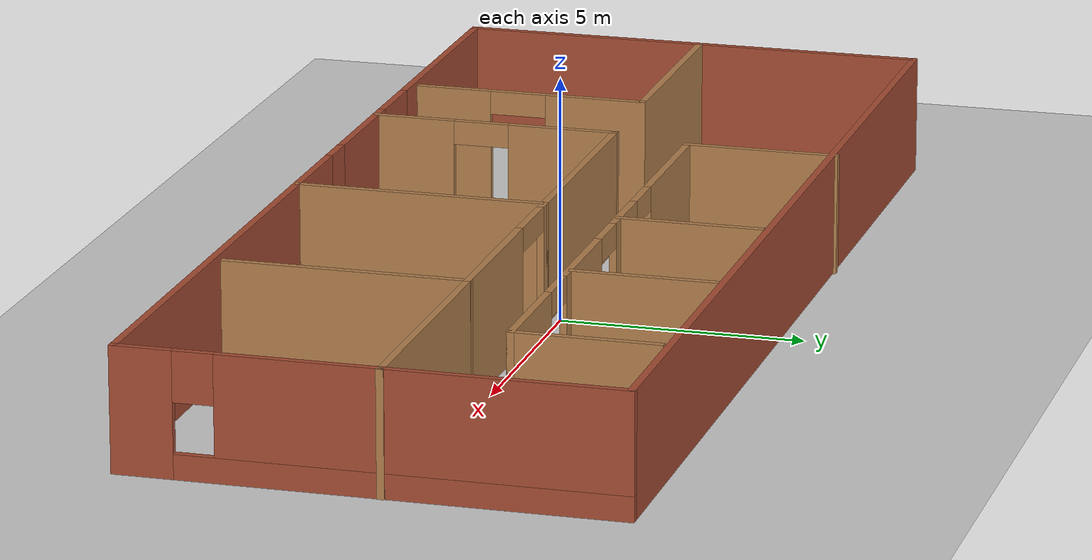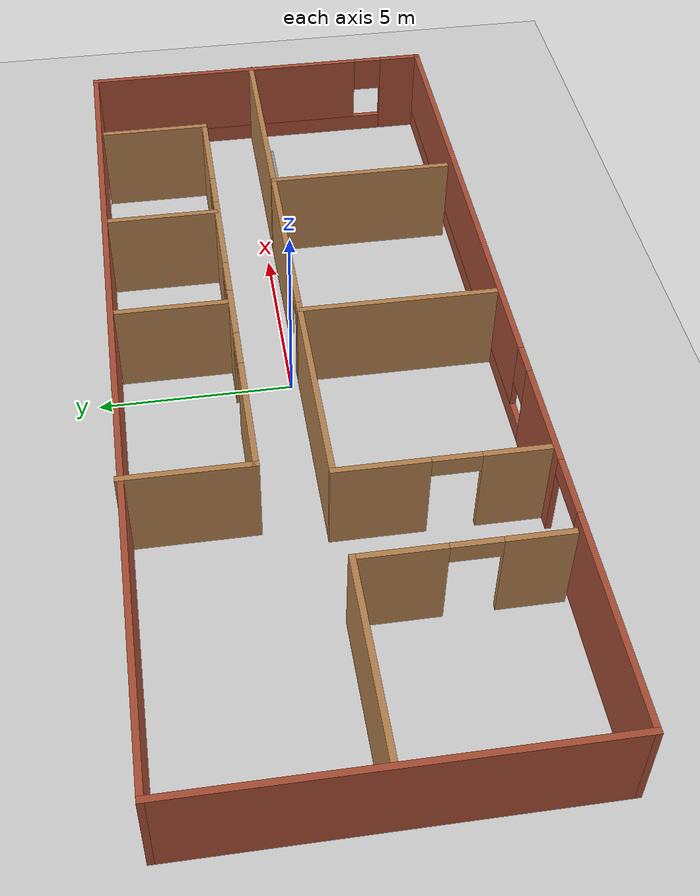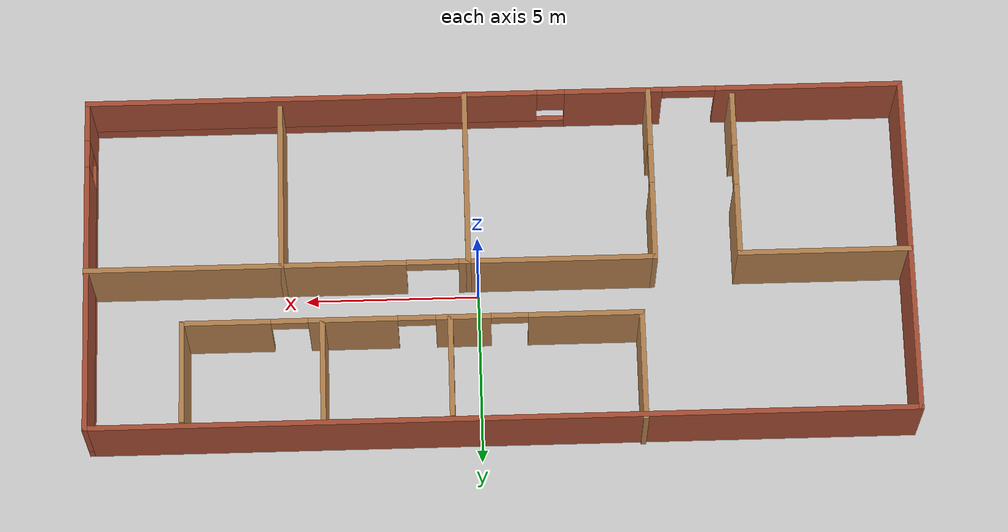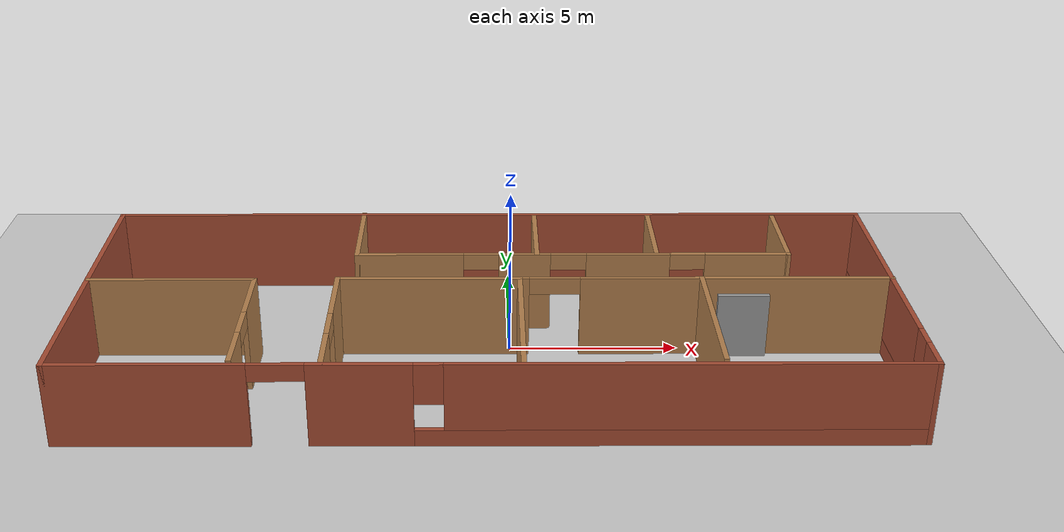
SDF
<sdf version="1.6">
 <world name="default">
  <light name="sun" type="directional">
   <pose>0 0 10 0 -0 0</pose>
   <diffuse>0.8 0.8 0.8 1</diffuse>
   <specular>0.2 0.2 0.2 1</specular>
   <attenuation>
    <range>1000</range>
    <constant>0.9</constant>
    <linear>0.01</linear>
    <quadratic>0.001</quadratic>
   </attenuation>
   <direction>-0.5 0.1 -0.9</direction>
  </light>
  <model name="ground_plane">
   <static>1</static>
   <link name="link">
    <collision name="collision">
     <geometry><plane><normal>0 0 1</normal><size>100 100</size></plane></geometry>
     <surface><friction><ode><mu>100</mu><mu2>50</mu2></ode></friction></surface>
    </collision>
    <visual name="visual">
     <cast_shadows>0</cast_shadows>
     <geometry><plane><normal>0 0 1</normal><size>100 100</size></plane></geometry>
     <material>
      <script><uri>file://media/materials/scripts/gazebo.material</uri><name>Gazebo/Grey</name></script>
     </material>
    </visual>
   </link>
  </model>
  <gravity>0 0 -9.8</gravity>
  <magnetic_field>6e-06 2.3e-05 -4.2e-05</magnetic_field>
  <atmosphere type="adiabatic"/>
  <physics name="default_physics" default="0" type="ode">
   <max_step_size>0.001</max_step_size>
   <real_time_factor>1</real_time_factor>
   <real_time_update_rate>1000</real_time_update_rate>
  </physics>
  <scene><ambient>0.4 0.4 0.4 1</ambient><background>0.7 0.7 0.7 1</background><shadows>1</shadows></scene>
  <spherical_coordinates>
   <surface_model>EARTH_WGS84</surface_model>
   <latitude_deg>0</latitude_deg>
   <longitude_deg>0</longitude_deg>
   <elevation>0</elevation>
   <heading_deg>0</heading_deg>
  </spherical_coordinates>
  <model name="walls_office">
   <pose>-0.58959 -0.448884 0 0 -0 0</pose>
   <link name="Door_4">
    <collision name="Door_4_Collision">
     <geometry><box><size>1.52453 0.2 2</size></box></geometry>
     <pose>0 0 1 0 -0 0</pose>
    </collision>
    <visual name="Door_4_Visual">
     <pose>0 0 1 0 -0 0</pose>
     <geometry><box><size>1.52453 0.2 2</size></box></geometry>
     <material>
      <script><uri>file://media/materials/scripts/gazebo.material</uri><name>Gazebo/Grey</name></script>
     </material>
    </visual>
    <pose>7.45784 0.061186 0 0 -0 0</pose>
   </link>
   <link name="Wall_0">
    <pose>-0.011229 -4.95581 0 0 -0 0</pose>
    <visual name="Wall_0_Visual_0">
     <pose>-9.1511 0 1.25 0 -0 0</pose>
     <geometry><box><size>5.4478 0.15 2.5</size></box></geometry>
     <material>
      <script><uri>file://media/materials/scripts/gazebo.material</uri><name>Gazebo/Bricks</name></script>
      <ambient>1 1 1 1</ambient>
     </material>
     <meta><layer>0</layer></meta>
    </visual>
    <collision name="Wall_0_Collision_0">
     <geometry><box><size>5.4478 0.15 2.5</size></box></geometry>
     <pose>-9.1511 0 1.25 0 -0 0</pose>
    </collision>
    <visual name="Wall_0_Visual_1">
     <pose>-3.46853 0 1.25 0 -0 0</pose>
     <geometry><box><size>2.84447 0.15 2.5</size></box></geometry>
     <material>
      <script><uri>file://media/materials/scripts/gazebo.material</uri><name>Gazebo/Bricks</name></script>
      <ambient>1 1 1 1</ambient>
     </material>
     <meta><layer>0</layer></meta>
    </visual>
    <collision name="Wall_0_Collision_1">
     <geometry><box><size>2.84447 0.15 2.5</size></box></geometry>
     <pose>-3.46853 0 1.25 0 -0 0</pose>
    </collision>
    <visual name="Wall_0_Visual_2">
     <pose>4.91435 0 0.25 0 -0 0</pose>
     <geometry><box><size>13.9213 0.15 0.5</size></box></geometry>
     <material>
      <script><uri>file://media/materials/scripts/gazebo.material</uri><name>Gazebo/Bricks</name></script>
      <ambient>1 1 1 1</ambient>
     </material>
     <meta><layer>0</layer></meta>
    </visual>
    <collision name="Wall_0_Collision_2">
     <geometry><box><size>13.9213 0.15 0.5</size></box></geometry>
     <pose>4.91435 0 0.25 0 -0 0</pose>
    </collision>
    <visual name="Wall_0_Visual_3">
     <pose>5.31435 0 1.5 0 -0 0</pose>
     <geometry><box><size>13.1213 0.15 2</size></box></geometry>
     <material>
      <script><uri>file://media/materials/scripts/gazebo.material</uri><name>Gazebo/Bricks</name></script>
      <ambient>1 1 1 1</ambient>
     </material>
     <meta><layer>0</layer></meta>
    </visual>
    <collision name="Wall_0_Collision_3">
     <geometry><box><size>13.1213 0.15 2</size></box></geometry>
     <pose>5.31435 0 1.5 0 -0 0</pose>
    </collision>
    <visual name="Wall_0_Visual_4">
     <pose>-1.64629 0 1.9 0 -0 0</pose>
     <geometry><box><size>0.8 0.15 1.2</size></box></geometry>
     <material>
      <script><uri>file://media/materials/scripts/gazebo.material</uri><name>Gazebo/Bricks</name></script>
      <ambient>1 1 1 1</ambient>
     </material>
     <meta><layer>0</layer></meta>
    </visual>
    <collision name="Wall_0_Collision_4">
     <geometry><box><size>0.8 0.15 1.2</size></box></geometry>
     <pose>-1.64629 0 1.9 0 -0 0</pose>
    </collision>
    <visual name="Wall_0_Visual_5">
     <pose>-5.65898 0 2.25 0 -0 0</pose>
     <geometry><box><size>1.53644 0.15 0.5</size></box></geometry>
     <material>
      <script><uri>file://media/materials/scripts/gazebo.material</uri><name>Gazebo/Bricks</name></script>
      <ambient>1 1 1 1</ambient>
     </material>
     <meta><layer>0</layer></meta>
    </visual>
    <collision name="Wall_0_Collision_5">
     <geometry><box><size>1.53644 0.15 0.5</size></box></geometry>
     <pose>-5.65898 0 2.25 0 -0 0</pose>
    </collision>
   </link>
   <link name="Wall_1">
    <pose>11.7888 -0.030808 0 0 -0 1.5708</pose>
    <visual name="Wall_1_Visual_0">
     <pose>-4.38797 0 1.25 0 -0 0</pose>
     <geometry><box><size>1.22407 0.15 2.5</size></box></geometry>
     <material>
      <script><uri>file://media/materials/scripts/gazebo.material</uri><name>Gazebo/Bricks</name></script>
      <ambient>1 1 1 1</ambient>
     </material>
     <meta><layer>0</layer></meta>
    </visual>
    <collision name="Wall_1_Collision_0">
     <geometry><box><size>1.22407 0.15 2.5</size></box></geometry>
     <pose>-4.38797 0 1.25 0 -0 0</pose>
    </collision>
    <visual name="Wall_1_Visual_1">
     <pose>0.612035 0 0.25 0 -0 0</pose>
     <geometry><box><size>8.77593 0.15 0.5</size></box></geometry>
     <material>
      <script><uri>file://media/materials/scripts/gazebo.material</uri><name>Gazebo/Bricks</name></script>
      <ambient>1 1 1 1</ambient>
     </material>
     <meta><layer>0</layer></meta>
    </visual>
    <collision name="Wall_1_Collision_1">
     <geometry><box><size>8.77593 0.15 0.5</size></box></geometry>
     <pose>0.612035 0 0.25 0 -0 0</pose>
    </collision>
    <visual name="Wall_1_Visual_2">
     <pose>1.01204 0 1.5 0 -0 0</pose>
     <geometry><box><size>7.97593 0.15 2</size></box></geometry>
     <material>
      <script><uri>file://media/materials/scripts/gazebo.material</uri><name>Gazebo/Bricks</name></script>
      <ambient>1 1 1 1</ambient>
     </material>
     <meta><layer>0</layer></meta>
    </visual>
    <collision name="Wall_1_Collision_2">
     <geometry><box><size>7.97593 0.15 2</size></box></geometry>
     <pose>1.01204 0 1.5 0 -0 0</pose>
    </collision>
    <visual name="Wall_1_Visual_3">
     <pose>-3.37593 0 2 0 -0 0</pose>
     <geometry><box><size>0.8 0.15 1</size></box></geometry>
     <material>
      <script><uri>file://media/materials/scripts/gazebo.material</uri><name>Gazebo/Bricks</name></script>
      <ambient>1 1 1 1</ambient>
     </material>
     <meta><layer>0</layer></meta>
    </visual>
    <collision name="Wall_1_Collision_3">
     <geometry><box><size>0.8 0.15 1</size></box></geometry>
     <pose>-3.37593 0 2 0 -0 0</pose>
    </collision>
   </link>
   <link name="Wall_10">
    <pose>-4.48877 -2.36535 0 0 -0 1.5708</pose>
    <visual name="Wall_10_Visual_0">
     <pose>-1.75423 0 1.25 0 -0 0</pose>
     <geometry><box><size>1.74154 0.15 2.5</size></box></geometry>
     <material>
      <script><uri>file://media/materials/scripts/gazebo.material</uri><name>Gazebo/Wood</name></script>
      <ambient>1 1 1 1</ambient>
     </material>
     <meta><layer>0</layer></meta>
    </visual>
    <collision name="Wall_10_Collision_0">
     <geometry><box><size>1.74154 0.15 2.5</size></box></geometry>
     <pose>-1.75423 0 1.25 0 -0 0</pose>
    </collision>
    <visual name="Wall_10_Visual_1">
     <pose>1.45955 0 1.25 0 -0 0</pose>
     <geometry><box><size>2.3309 0.15 2.5</size></box></geometry>
     <material>
      <script><uri>file://media/materials/scripts/gazebo.material</uri><name>Gazebo/Wood</name></script>
      <ambient>1 1 1 1</ambient>
     </material>
     <meta><layer>0</layer></meta>
    </visual>
    <collision name="Wall_10_Collision_1">
     <geometry><box><size>2.3309 0.15 2.5</size></box></geometry>
     <pose>1.45955 0 1.25 0 -0 0</pose>
    </collision>
    <visual name="Wall_10_Visual_2">
     <pose>-0.29468 0 2.25 0 -0 0</pose>
     <geometry><box><size>1.17757 0.15 0.5</size></box></geometry>
     <material>
      <script><uri>file://media/materials/scripts/gazebo.material</uri><name>Gazebo/Wood</name></script>
      <ambient>1 1 1 1</ambient>
     </material>
     <meta><layer>0</layer></meta>
    </visual>
    <collision name="Wall_10_Collision_2">
     <geometry><box><size>1.17757 0.15 0.5</size></box></geometry>
     <pose>-0.29468 0 2.25 0 -0 0</pose>
    </collision>
   </link>
   <link name="Wall_11">
    <collision name="Wall_11_Collision">
     <geometry><box><size>5.5 0.15 2.5</size></box></geometry>
     <pose>0 0 1.25 0 -0 0</pose>
    </collision>
    <visual name="Wall_11_Visual">
     <pose>0 0 1.25 0 -0 0</pose>
     <geometry><box><size>5.5 0.15 2.5</size></box></geometry>
     <material>
      <script><uri>file://media/materials/scripts/gazebo.material</uri><name>Gazebo/Wood</name></script>
      <ambient>1 1 1 1</ambient>
     </material>
     <meta><layer>0</layer></meta>
    </visual>
    <pose>-1.81377 0.184648 0 0 -0 0</pose>
   </link>
   <link name="Wall_12">
    <collision name="Wall_12_Collision">
     <geometry><box><size>5.25 0.15 2.5</size></box></geometry>
     <pose>0 0 1.25 0 -0 0</pose>
    </collision>
    <visual name="Wall_12_Visual">
     <pose>0 0 1.25 0 -0 0</pose>
     <geometry><box><size>5.25 0.15 2.5</size></box></geometry>
     <material>
      <script><uri>file://media/materials/scripts/gazebo.material</uri><name>Gazebo/Wood</name></script>
      <ambient>1 1 1 1</ambient>
     </material>
     <meta><layer>0</layer></meta>
    </visual>
    <pose>0.86123 -2.36535 0 0 0 -1.5708</pose>
   </link>
   <link name="Wall_14">
    <pose>3.53623 0.184648 0 0 -0 0</pose>
    <visual name="Wall_14_Visual_0">
     <pose>-2.57496 0 1.25 0 -0 0</pose>
     <geometry><box><size>0.350081 0.15 2.5</size></box></geometry>
     <material>
      <script><uri>file://media/materials/scripts/gazebo.material</uri><name>Gazebo/Wood</name></script>
      <ambient>1 1 1 1</ambient>
     </material>
     <meta><layer>0</layer></meta>
    </visual>
    <collision name="Wall_14_Collision_0">
     <geometry><box><size>0.350081 0.15 2.5</size></box></geometry>
     <pose>-2.57496 0 1.25 0 -0 0</pose>
    </collision>
    <visual name="Wall_14_Visual_1">
     <pose>0.925738 0 1.25 0 -0 0</pose>
     <geometry><box><size>3.64852 0.15 2.5</size></box></geometry>
     <material>
      <script><uri>file://media/materials/scripts/gazebo.material</uri><name>Gazebo/Wood</name></script>
      <ambient>1 1 1 1</ambient>
     </material>
     <meta><layer>0</layer></meta>
    </visual>
    <collision name="Wall_14_Collision_1">
     <geometry><box><size>3.64852 0.15 2.5</size></box></geometry>
     <pose>0.925738 0 1.25 0 -0 0</pose>
    </collision>
    <visual name="Wall_14_Visual_2">
     <pose>-1.64922 0 2.25 0 -0 0</pose>
     <geometry><box><size>1.5014 0.15 0.5</size></box></geometry>
     <material>
      <script><uri>file://media/materials/scripts/gazebo.material</uri><name>Gazebo/Wood</name></script>
      <ambient>1 1 1 1</ambient>
     </material>
     <meta><layer>0</layer></meta>
    </visual>
    <collision name="Wall_14_Collision_2">
     <geometry><box><size>1.5014 0.15 0.5</size></box></geometry>
     <pose>-1.64922 0 2.25 0 -0 0</pose>
    </collision>
   </link>
   <link name="Wall_15">
    <collision name="Wall_15_Collision">
     <geometry><box><size>5 0.15 2.5</size></box></geometry>
     <pose>0 0 1.25 0 -0 0</pose>
    </collision>
    <visual name="Wall_15_Visual">
     <pose>0 0 1.25 0 -0 0</pose>
     <geometry><box><size>5 0.15 2.5</size></box></geometry>
     <material>
      <script><uri>file://media/materials/scripts/gazebo.material</uri><name>Gazebo/Wood</name></script>
      <ambient>1 1 1 1</ambient>
     </material>
     <meta><layer>0</layer></meta>
    </visual>
    <pose>6.21123 -2.24035 0 0 0 -1.5708</pose>
   </link>
   <link name="Wall_17">
    <collision name="Wall_17_Collision">
     <geometry><box><size>5.75 0.15 2.5</size></box></geometry>
     <pose>0 0 1.25 0 -0 0</pose>
    </collision>
    <visual name="Wall_17_Visual">
     <pose>0 0 1.25 0 -0 0</pose>
     <geometry><box><size>5.75 0.15 2.5</size></box></geometry>
     <material>
      <script><uri>file://media/materials/scripts/gazebo.material</uri><name>Gazebo/Wood</name></script>
      <ambient>1 1 1 1</ambient>
     </material>
     <meta><layer>0</layer></meta>
    </visual>
    <pose>9.01123 0.184648 0 0 -0 0</pose>
   </link>
   <link name="Wall_19">
    <collision name="Wall_19_Collision">
     <geometry><box><size>3.25 0.15 2.5</size></box></geometry>
     <pose>0 0 1.25 0 -0 0</pose>
    </collision>
    <visual name="Wall_19_Visual">
     <pose>0 0 1.25 0 -0 0</pose>
     <geometry><box><size>3.25 0.15 2.5</size></box></geometry>
     <material>
      <script><uri>file://media/materials/scripts/gazebo.material</uri><name>Gazebo/Wood</name></script>
      <ambient>1 1 1 1</ambient>
     </material>
     <meta><layer>0</layer></meta>
    </visual>
    <pose>-4.04376 3.40581 0 0 0 -1.5708</pose>
   </link>
   <link name="Wall_2">
    <collision name="Wall_2_Collision">
     <geometry><box><size>23.75 0.15 2.5</size></box></geometry>
     <pose>0 0 1.25 0 -0 0</pose>
    </collision>
    <visual name="Wall_2_Visual">
     <pose>0 0 1.25 0 -0 0</pose>
     <geometry><box><size>23.75 0.15 2.5</size></box></geometry>
     <material>
      <script><uri>file://media/materials/scripts/gazebo.material</uri><name>Gazebo/Bricks</name></script>
      <ambient>1 1 1 1</ambient>
     </material>
     <meta><layer>0</layer></meta>
    </visual>
    <pose>-0.011229 4.89419 0 0 -0 3.14159</pose>
   </link>
   <link name="Wall_20">
    <pose>2.50624 1.85581 0 0 -0 0</pose>
    <visual name="Wall_20_Visual_0">
     <pose>-4.97086 0 1.25 0 -0 0</pose>
     <geometry><box><size>3.30827 0.15 2.5</size></box></geometry>
     <material>
      <script><uri>file://media/materials/scripts/gazebo.material</uri><name>Gazebo/Wood</name></script>
      <ambient>1 1 1 1</ambient>
     </material>
     <meta><layer>0</layer></meta>
    </visual>
    <collision name="Wall_20_Collision_0">
     <geometry><box><size>3.30827 0.15 2.5</size></box></geometry>
     <pose>-4.97086 0 1.25 0 -0 0</pose>
    </collision>
    <visual name="Wall_20_Visual_1">
     <pose>-1.46608 0 1.25 0 -0 0</pose>
     <geometry><box><size>1.57747 0.15 2.5</size></box></geometry>
     <material>
      <script><uri>file://media/materials/scripts/gazebo.material</uri><name>Gazebo/Wood</name></script>
      <ambient>1 1 1 1</ambient>
     </material>
     <meta><layer>0</layer></meta>
    </visual>
    <collision name="Wall_20_Collision_1">
     <geometry><box><size>1.57747 0.15 2.5</size></box></geometry>
     <pose>-1.46608 0 1.25 0 -0 0</pose>
    </collision>
    <visual name="Wall_20_Visual_2">
     <pose>1.68093 0 1.25 0 -0 0</pose>
     <geometry><box><size>2.54646 0.15 2.5</size></box></geometry>
     <material>
      <script><uri>file://media/materials/scripts/gazebo.material</uri><name>Gazebo/Wood</name></script>
      <ambient>1 1 1 1</ambient>
     </material>
     <meta><layer>0</layer></meta>
    </visual>
    <collision name="Wall_20_Collision_2">
     <geometry><box><size>2.54646 0.15 2.5</size></box></geometry>
     <pose>1.68093 0 1.25 0 -0 0</pose>
    </collision>
    <visual name="Wall_20_Visual_3">
     <pose>5.32054 0 1.25 0 -0 0</pose>
     <geometry><box><size>2.60893 0.15 2.5</size></box></geometry>
     <material>
      <script><uri>file://media/materials/scripts/gazebo.material</uri><name>Gazebo/Wood</name></script>
      <ambient>1 1 1 1</ambient>
     </material>
     <meta><layer>0</layer></meta>
    </visual>
    <collision name="Wall_20_Collision_3">
     <geometry><box><size>2.60893 0.15 2.5</size></box></geometry>
     <pose>5.32054 0 1.25 0 -0 0</pose>
    </collision>
    <visual name="Wall_20_Visual_4">
     <pose>-2.78577 0 2.25 0 -0 0</pose>
     <geometry><box><size>1.06191 0.15 0.5</size></box></geometry>
     <material>
      <script><uri>file://media/materials/scripts/gazebo.material</uri><name>Gazebo/Wood</name></script>
      <ambient>1 1 1 1</ambient>
     </material>
     <meta><layer>0</layer></meta>
    </visual>
    <collision name="Wall_20_Collision_4">
     <geometry><box><size>1.06191 0.15 0.5</size></box></geometry>
     <pose>-2.78577 0 2.25 0 -0 0</pose>
    </collision>
    <visual name="Wall_20_Visual_5">
     <pose>-0.134826 0 2.25 0 -0 0</pose>
     <geometry><box><size>1.08505 0.15 0.5</size></box></geometry>
     <material>
      <script><uri>file://media/materials/scripts/gazebo.material</uri><name>Gazebo/Wood</name></script>
      <ambient>1 1 1 1</ambient>
     </material>
     <meta><layer>0</layer></meta>
    </visual>
    <collision name="Wall_20_Collision_5">
     <geometry><box><size>1.08505 0.15 0.5</size></box></geometry>
     <pose>-0.134826 0 2.25 0 -0 0</pose>
    </collision>
    <visual name="Wall_20_Visual_6">
     <pose>3.48511 0 2.25 0 -0 0</pose>
     <geometry><box><size>1.06191 0.15 0.5</size></box></geometry>
     <material>
      <script><uri>file://media/materials/scripts/gazebo.material</uri><name>Gazebo/Wood</name></script>
      <ambient>1 1 1 1</ambient>
     </material>
     <meta><layer>0</layer></meta>
    </visual>
    <collision name="Wall_20_Collision_6">
     <geometry><box><size>1.06191 0.15 0.5</size></box></geometry>
     <pose>3.48511 0 2.25 0 -0 0</pose>
    </collision>
   </link>
   <link name="Wall_21">
    <collision name="Wall_21_Collision">
     <geometry><box><size>3 0.15 2.5</size></box></geometry>
     <pose>0 0 1.25 0 -0 0</pose>
    </collision>
    <visual name="Wall_21_Visual">
     <pose>0 0 1.25 0 -0 0</pose>
     <geometry><box><size>3 0.15 2.5</size></box></geometry>
     <material>
      <script><uri>file://media/materials/scripts/gazebo.material</uri><name>Gazebo/Wood</name></script>
      <ambient>1 1 1 1</ambient>
     </material>
     <meta><layer>0</layer></meta>
    </visual>
    <pose>9.05624 3.28081 0 0 -0 1.5708</pose>
   </link>
   <link name="Wall_23">
    <collision name="Wall_23_Collision">
     <geometry><box><size>3 0.15 2.5</size></box></geometry>
     <pose>0 0 1.25 0 -0 0</pose>
    </collision>
    <visual name="Wall_23_Visual">
     <pose>0 0 1.25 0 -0 0</pose>
     <geometry><box><size>3 0.15 2.5</size></box></geometry>
     <material>
      <script><uri>file://media/materials/scripts/gazebo.material</uri><name>Gazebo/Wood</name></script>
      <ambient>1 1 1 1</ambient>
     </material>
     <meta><layer>0</layer></meta>
    </visual>
    <pose>1.41775 3.30619 0 0 -0 1.5708</pose>
   </link>
   <link name="Wall_25">
    <collision name="Wall_25_Collision">
     <geometry><box><size>3 0.15 2.5</size></box></geometry>
     <pose>0 0 1.25 0 -0 0</pose>
    </collision>
    <visual name="Wall_25_Visual">
     <pose>0 0 1.25 0 -0 0</pose>
     <geometry><box><size>3 0.15 2.5</size></box></geometry>
     <material>
      <script><uri>file://media/materials/scripts/gazebo.material</uri><name>Gazebo/Wood</name></script>
      <ambient>1 1 1 1</ambient>
     </material>
     <meta><layer>0</layer></meta>
    </visual>
    <pose>5.05875 3.34664 0 0 -0 1.5708</pose>
   </link>
   <link name="Wall_3">
    <collision name="Wall_3_Collision">
     <geometry><box><size>10 0.15 2.5</size></box></geometry>
     <pose>0 0 1.25 0 -0 0</pose>
    </collision>
    <visual name="Wall_3_Visual">
     <pose>0 0 1.25 0 -0 0</pose>
     <geometry><box><size>10 0.15 2.5</size></box></geometry>
     <material>
      <script><uri>file://media/materials/scripts/gazebo.material</uri><name>Gazebo/Bricks</name></script>
      <ambient>1 1 1 1</ambient>
     </material>
     <meta><layer>0</layer></meta>
    </visual>
    <pose>-11.8112 -0.030808 0 0 0 -1.5708</pose>
   </link>
   <link name="Wall_7">
    <collision name="Wall_7_Collision">
     <geometry><box><size>5 0.15 2.5</size></box></geometry>
     <pose>0 0 1.25 0 -0 0</pose>
    </collision>
    <visual name="Wall_7_Visual">
     <pose>0 0 1.25 0 -0 0</pose>
     <geometry><box><size>5 0.15 2.5</size></box></geometry>
     <material>
      <script><uri>file://media/materials/scripts/gazebo.material</uri><name>Gazebo/Wood</name></script>
      <ambient>1 1 1 1</ambient>
     </material>
     <meta><layer>0</layer></meta>
    </visual>
    <pose>-9.34577 0.141595 0 0 -0 0</pose>
   </link>
   <link name="Wall_8">
    <pose>-6.92077 -2.28341 0 0 0 -1.5708</pose>
    <visual name="Wall_8_Visual_0">
     <pose>-1.41353 0 1.25 0 -0 0</pose>
     <geometry><box><size>2.17294 0.15 2.5</size></box></geometry>
     <material>
      <script><uri>file://media/materials/scripts/gazebo.material</uri><name>Gazebo/Wood</name></script>
      <ambient>1 1 1 1</ambient>
     </material>
     <meta><layer>0</layer></meta>
    </visual>
    <collision name="Wall_8_Collision_0">
     <geometry><box><size>2.17294 0.15 2.5</size></box></geometry>
     <pose>-1.41353 0 1.25 0 -0 0</pose>
    </collision>
    <visual name="Wall_8_Visual_1">
     <pose>1.68682 0 1.25 0 -0 0</pose>
     <geometry><box><size>1.62636 0.15 2.5</size></box></geometry>
     <material>
      <script><uri>file://media/materials/scripts/gazebo.material</uri><name>Gazebo/Wood</name></script>
      <ambient>1 1 1 1</ambient>
     </material>
     <meta><layer>0</layer></meta>
    </visual>
    <collision name="Wall_8_Collision_1">
     <geometry><box><size>1.62636 0.15 2.5</size></box></geometry>
     <pose>1.68682 0 1.25 0 -0 0</pose>
    </collision>
    <visual name="Wall_8_Visual_2">
     <pose>0.273291 0 2.25 0 -0 0</pose>
     <geometry><box><size>1.2007 0.15 0.5</size></box></geometry>
     <material>
      <script><uri>file://media/materials/scripts/gazebo.material</uri><name>Gazebo/Wood</name></script>
      <ambient>1 1 1 1</ambient>
     </material>
     <meta><layer>0</layer></meta>
    </visual>
    <collision name="Wall_8_Collision_2">
     <geometry><box><size>1.2007 0.15 0.5</size></box></geometry>
     <pose>0.273291 0 2.25 0 -0 0</pose>
    </collision>
   </link>
   <static>1</static>
  </model>
  <plugin name="gazebo_connection_plugin" filename="libgazebo_connection_plugin.so"/>
 </world>
</sdf>
